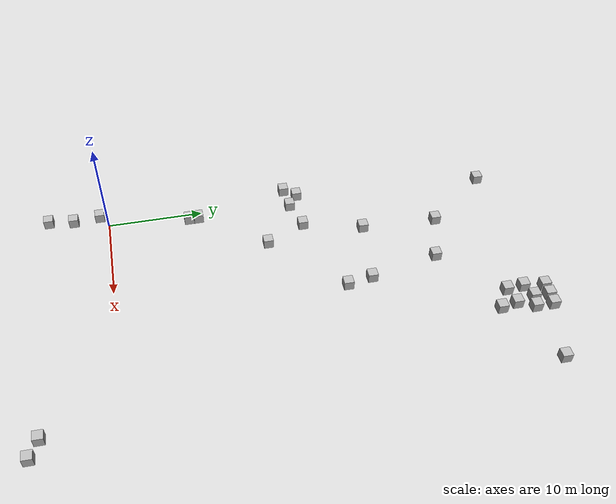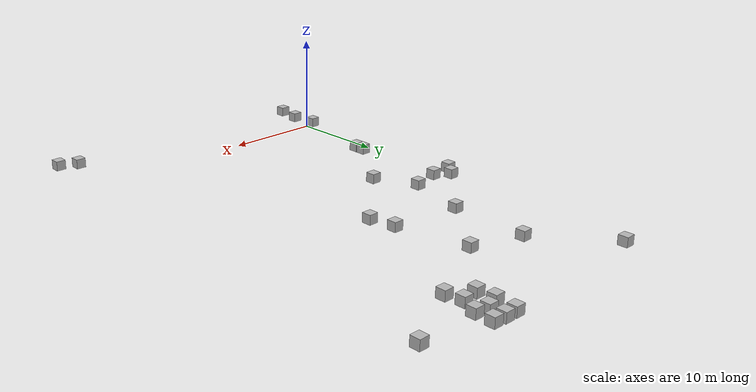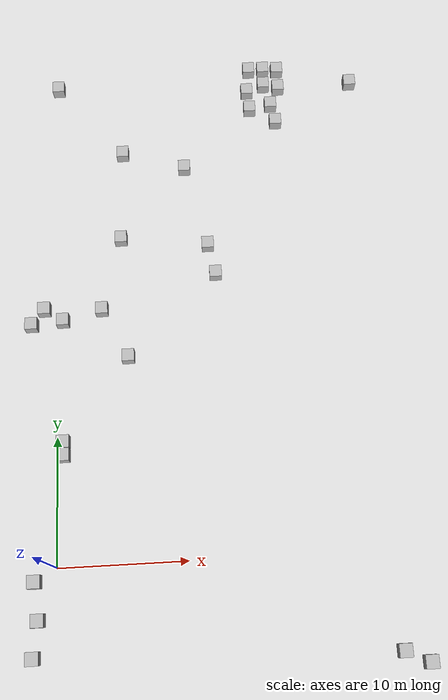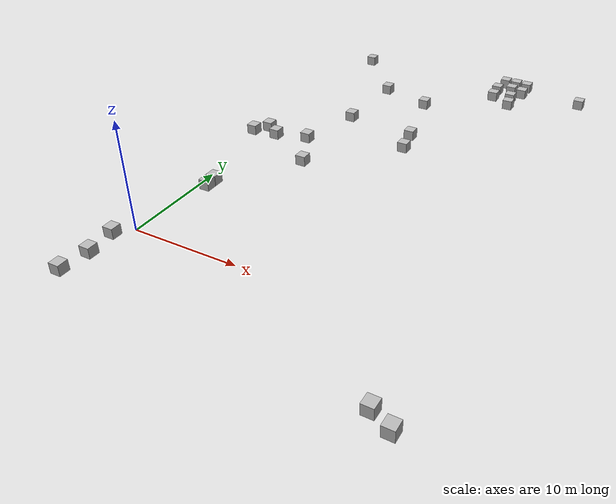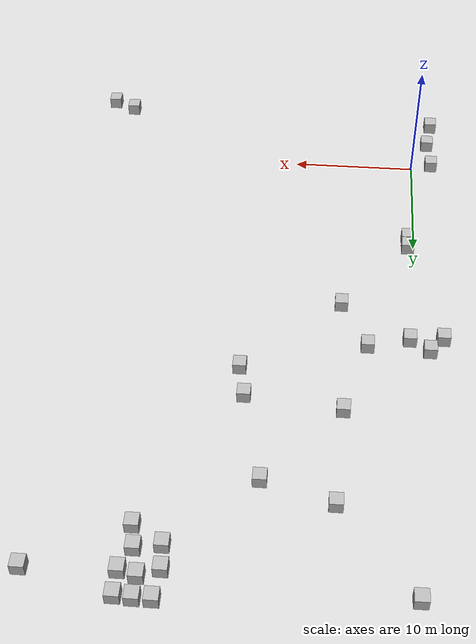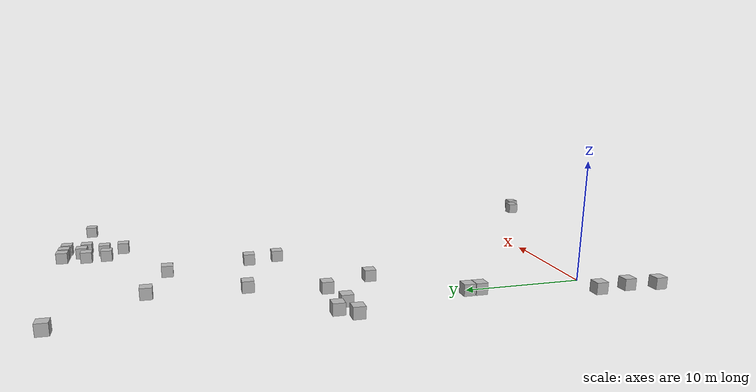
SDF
<sdf version="1.10">
 <world name="factorymate_dynamic_logistics_warehouse">
  <gravity>0 0 -9.8</gravity>
  <physics name="default_physics" default="0" type="ode">
   <max_step_size>0.001</max_step_size>
   <real_time_factor>1</real_time_factor>
   <real_time_update_rate>1000</real_time_update_rate>
  </physics>
  <scene>
   <ambient>0.55 0.55 0.55 1</ambient>
   <background>0.8 0.8 0.8 1</background>
   <shadows>true</shadows>
  </scene>
  <light type="directional" name="sun">
   <pose>0 0 15 0 0 0</pose>
   <diffuse>0.9 0.9 0.9 1</diffuse>
   <specular>0.25 0.25 0.25 1</specular>
   <attenuation>
    <range>1000</range>
    <constant>0.9</constant>
    <linear>0.01</linear>
    <quadratic>0.001</quadratic>
   </attenuation>
   <direction>-0.5 0.2 -1.0</direction>
  </light>
  <model name="aws_robomaker_warehouse_Bucket_01_020">
   <link name="aws_robomaker_warehouse_Bucket_01__body">
    <visual name="visual"><geometry><box><size>1 1 1</size></box></geometry><meta><layer>1</layer></meta></visual>
    <collision name="collision_0">
     <geometry><box><size>1 1 1</size></box></geometry>
     <surface>
      <friction>
       <ode><mu>0.4</mu><mu2>0.4</mu2><fdir1>0 0 0</fdir1><slip1>0</slip1><slip2>0</slip2></ode>
       <torsional>
        <coefficient>1</coefficient>
        <patch_radius>0</patch_radius>
        <surface_radius>0</surface_radius>
        <use_patch_radius>1</use_patch_radius>
        <ode><slip>0</slip></ode>
       </torsional>
      </friction>
     </surface>
    </collision>
   </link>
   <static>1</static>
   <pose>0.433449 9.63171 0 0 0 -1.56316</pose>
  </model>
  <model name="aws_robomaker_warehouse_Bucket_01_021">
   <link name="aws_robomaker_warehouse_Bucket_01__body">
    <visual name="visual"><geometry><box><size>1 1 1</size></box></geometry><meta><layer>1</layer></meta></visual>
    <collision name="collision_0">
     <geometry><box><size>1 1 1</size></box></geometry>
     <surface>
      <friction>
       <ode><mu>0.4</mu><mu2>0.4</mu2><fdir1>0 0 0</fdir1><slip1>0</slip1><slip2>0</slip2></ode>
       <torsional>
        <coefficient>1</coefficient>
        <patch_radius>0</patch_radius>
        <surface_radius>0</surface_radius>
        <use_patch_radius>1</use_patch_radius>
        <ode><slip>0</slip></ode>
       </torsional>
      </friction>
     </surface>
    </collision>
   </link>
   <static>1</static>
   <pose>-1.8321 -6.3752 0 0 0 -1.56316</pose>
  </model>
  <model name="aws_robomaker_warehouse_Bucket_01_022">
   <link name="aws_robomaker_warehouse_Bucket_01__body">
    <visual name="visual"><geometry><box><size>1 1 1</size></box></geometry><meta><layer>1</layer></meta></visual>
    <collision name="collision_0">
     <geometry><box><size>1 1 1</size></box></geometry>
     <surface>
      <friction>
       <ode><mu>0.4</mu><mu2>0.4</mu2><fdir1>0 0 0</fdir1><slip1>0</slip1><slip2>0</slip2></ode>
       <torsional>
        <coefficient>1</coefficient>
        <patch_radius>0</patch_radius>
        <surface_radius>0</surface_radius>
        <use_patch_radius>1</use_patch_radius>
        <ode><slip>0</slip></ode>
       </torsional>
      </friction>
     </surface>
    </collision>
   </link>
   <static>1</static>
   <pose>0.433449 8.59 0 0 0 -1.56316</pose>
  </model>
  <light name="Warehouse_CeilingLight_003" type="point">
   <pose>0 0 9 0 -0 0</pose>
   <diffuse>0.5 0.5 0.5 1</diffuse>
   <specular>0.2 0.2 0.2 1</specular>
   <attenuation>
    <range>80</range>
    <constant>0.3</constant>
    <linear>0.01</linear>
    <quadratic>0.001</quadratic>
   </attenuation>
   <direction>0.1 0.1 -1</direction>
  </light>
  <magnetic_field>6e-06 2.3e-05 -4.2e-05</magnetic_field>
  <atmosphere type="adiabatic"/>
  <scene><ambient>0.4 0.4 0.4 1</ambient><background>0.7 0.7 0.7 1</background><shadows>1</shadows></scene>
  <audio><device>default</device></audio>
  <spherical_coordinates>
   <surface_model>EARTH_WGS84</surface_model>
   <latitude_deg>0</latitude_deg>
   <longitude_deg>0</longitude_deg>
   <elevation>0</elevation>
   <heading_deg>0</heading_deg>
  </spherical_coordinates>
  <model name="Untitled">
   <model name="aws_robomaker_warehouse_Bucket_01">
    <link name="body">
     <visual name="visual"><geometry><box><size>1 1 1</size></box></geometry><meta><layer>1</layer></meta></visual>
     <collision name="collision_0">
      <geometry><box><size>1 1 1</size></box></geometry>
      <surface>
       <friction>
        <ode><mu>0.4</mu><mu2>0.4</mu2><fdir1>0 0 0</fdir1><slip1>0</slip1><slip2>0</slip2></ode>
        <torsional>
         <coefficient>1</coefficient>
         <patch_radius>0</patch_radius>
         <surface_radius>0</surface_radius>
         <use_patch_radius>1</use_patch_radius>
         <ode><slip>0</slip></ode>
        </torsional>
       </friction>
      </surface>
     </collision>
    </link>
    <static>1</static>
    <pose>0.141914 -1.40115 0 0 -0 0</pose>
   </model>
   <model name="aws_robomaker_warehouse_DeskC_01">
    <link name="link">
     <collision name="collision">
      <geometry><box><size>1 1 1</size></box></geometry>
      <surface>
       <friction><ode><mu>0.3</mu><mu2>0.3</mu2><fdir1>0 0 0</fdir1><slip1>0</slip1><slip2>0</slip2></ode></friction>
      </surface>
     </collision>
     <visual name="visual"><geometry><box><size>1 1 1</size></box></geometry><meta><layer>1</layer></meta></visual>
    </link>
    <static>1</static>
    <pose>-0.141916 1.40114 0 0 -0 0</pose>
   </model>
   <static>0</static>
   <pose>-1.60315 -2.32122 0 0 -0 0</pose>
  </model>
  <model name="aws_robomaker_warehouse_Bucket_01_0">
   <link name="body">
    <visual name="visual"><geometry><box><size>1 1 1</size></box></geometry><meta><layer>1</layer></meta></visual>
    <collision name="collision_0">
     <geometry><box><size>1 1 1</size></box></geometry>
     <surface>
      <friction>
       <ode><mu>0.4</mu><mu2>0.4</mu2><fdir1>0 0 0</fdir1><slip1>0</slip1><slip2>0</slip2></ode>
       <torsional>
        <coefficient>1</coefficient>
        <patch_radius>0</patch_radius>
        <surface_radius>0</surface_radius>
        <use_patch_radius>1</use_patch_radius>
        <ode><slip>0</slip></ode>
       </torsional>
      </friction>
     </surface>
    </collision>
   </link>
   <static>1</static>
   <pose>5.70576 16.4215 0 0 -0 0</pose>
  </model>
  <model name="waybot_gorund">
   <link name="link">
    <visual name="visual"><geometry><box><size>1 1 1</size></box></geometry><meta><layer>1</layer></meta></visual>
    <collision name="collision">
     <geometry><box><size>1 1 1</size></box></geometry>
     <surface>
      <friction>
       <ode><mu>0.3</mu><mu2>0.3</mu2><fdir1>0 0 0</fdir1><slip1>0</slip1><slip2>0</slip2></ode>
       <torsional>
        <coefficient>1</coefficient>
        <patch_radius>0</patch_radius>
        <surface_radius>0</surface_radius>
        <use_patch_radius>1</use_patch_radius>
        <ode><slip>0</slip></ode>
       </torsional>
      </friction>
      <bounce><restitution_coefficient>0</restitution_coefficient><threshold>1e+06</threshold></bounce>
      <contact>
       <collide_without_contact>0</collide_without_contact>
       <collide_without_contact_bitmask>1</collide_without_contact_bitmask>
       <collide_bitmask>1</collide_bitmask>
       <ode>
        <soft_cfm>0</soft_cfm>
        <soft_erp>0.2</soft_erp>
        <kp>1e+13</kp>
        <kd>1</kd>
        <max_vel>0.01</max_vel>
        <min_depth>0</min_depth>
       </ode>
       <bullet>
        <split_impulse>1</split_impulse>
        <split_impulse_penetration_threshold>-0.01</split_impulse_penetration_threshold>
        <soft_cfm>0</soft_cfm>
        <soft_erp>0.2</soft_erp>
        <kp>1e+13</kp>
        <kd>1</kd>
       </bullet>
      </contact>
     </surface>
    </collision>
   </link>
   <static>1</static>
   <pose>0.093862 41.632 0 0 -0 0</pose>
  </model>
  <model name="aws_robomaker_warehouse_Bucket_01_1">
   <link name="body">
    <visual name="visual"><geometry><box><size>1 1 1</size></box></geometry><meta><layer>1</layer></meta></visual>
    <collision name="collision_0">
     <geometry><box><size>1 1 1</size></box></geometry>
     <surface>
      <friction>
       <ode><mu>0.4</mu><mu2>0.4</mu2><fdir1>0 0 0</fdir1><slip1>0</slip1><slip2>0</slip2></ode>
       <torsional>
        <coefficient>1</coefficient>
        <patch_radius>0</patch_radius>
        <surface_radius>0</surface_radius>
        <use_patch_radius>1</use_patch_radius>
        <ode><slip>0</slip></ode>
       </torsional>
      </friction>
     </surface>
    </collision>
   </link>
   <static>1</static>
   <pose>5.32193 26.8473 0 0 -0 0</pose>
  </model>
  <model name="aws_robomaker_warehouse_Bucket_01_2">
   <link name="body">
    <visual name="visual"><geometry><box><size>1 1 1</size></box></geometry><meta><layer>1</layer></meta></visual>
    <collision name="collision_0">
     <geometry><box><size>1 1 1</size></box></geometry>
     <surface>
      <friction>
       <ode><mu>0.4</mu><mu2>0.4</mu2><fdir1>0 0 0</fdir1><slip1>0</slip1><slip2>0</slip2></ode>
       <torsional>
        <coefficient>1</coefficient>
        <patch_radius>0</patch_radius>
        <surface_radius>0</surface_radius>
        <use_patch_radius>1</use_patch_radius>
        <ode><slip>0</slip></ode>
       </torsional>
      </friction>
     </surface>
    </collision>
   </link>
   <static>1</static>
   <pose>5.63979 34.8748 0 0 -0 0</pose>
  </model>
  <model name="aws_robomaker_warehouse_Bucket_01_3">
   <link name="body">
    <visual name="visual"><geometry><box><size>1 1 1</size></box></geometry><meta><layer>1</layer></meta></visual>
    <collision name="collision_0">
     <geometry><box><size>1 1 1</size></box></geometry>
     <surface>
      <friction>
       <ode><mu>0.4</mu><mu2>0.4</mu2><fdir1>0 0 0</fdir1><slip1>0</slip1><slip2>0</slip2></ode>
       <torsional>
        <coefficient>1</coefficient>
        <patch_radius>0</patch_radius>
        <surface_radius>0</surface_radius>
        <use_patch_radius>1</use_patch_radius>
        <ode><slip>0</slip></ode>
       </torsional>
      </friction>
     </surface>
    </collision>
   </link>
   <static>1</static>
   <pose>3.6268 20.5877 0 0 -0 0</pose>
  </model>
  <model name="aws_robomaker_warehouse_Bucket_01_4">
   <link name="body">
    <visual name="visual"><geometry><box><size>1 1 1</size></box></geometry><meta><layer>1</layer></meta></visual>
    <collision name="collision_0">
     <geometry><box><size>1 1 1</size></box></geometry>
     <surface>
      <friction>
       <ode><mu>0.4</mu><mu2>0.4</mu2><fdir1>0 0 0</fdir1><slip1>0</slip1><slip2>0</slip2></ode>
       <torsional>
        <coefficient>1</coefficient>
        <patch_radius>0</patch_radius>
        <surface_radius>0</surface_radius>
        <use_patch_radius>1</use_patch_radius>
        <ode><slip>0</slip></ode>
       </torsional>
      </friction>
     </surface>
    </collision>
   </link>
   <static>1</static>
   <pose>-1.09618 20.7984 0 0 -0 0</pose>
  </model>
  <model name="aws_robomaker_warehouse_Bucket_01_5">
   <link name="body">
    <visual name="visual"><geometry><box><size>1 1 1</size></box></geometry><meta><layer>1</layer></meta></visual>
    <collision name="collision_0">
     <geometry><box><size>1 1 1</size></box></geometry>
     <surface>
      <friction>
       <ode><mu>0.4</mu><mu2>0.4</mu2><fdir1>0 0 0</fdir1><slip1>0</slip1><slip2>0</slip2></ode>
       <torsional>
        <coefficient>1</coefficient>
        <patch_radius>0</patch_radius>
        <surface_radius>0</surface_radius>
        <use_patch_radius>1</use_patch_radius>
        <ode><slip>0</slip></ode>
       </torsional>
      </friction>
     </surface>
    </collision>
   </link>
   <static>1</static>
   <pose>-2.13817 19.5115 0 0 -0 0</pose>
  </model>
  <model name="aws_robomaker_warehouse_Bucket_01_6">
   <link name="body">
    <visual name="visual"><geometry><box><size>1 1 1</size></box></geometry><meta><layer>1</layer></meta></visual>
    <collision name="collision_0">
     <geometry><box><size>1 1 1</size></box></geometry>
     <surface>
      <friction>
       <ode><mu>0.4</mu><mu2>0.4</mu2><fdir1>0 0 0</fdir1><slip1>0</slip1><slip2>0</slip2></ode>
       <torsional>
        <coefficient>1</coefficient>
        <patch_radius>0</patch_radius>
        <surface_radius>0</surface_radius>
        <use_patch_radius>1</use_patch_radius>
        <ode><slip>0</slip></ode>
       </torsional>
      </friction>
     </surface>
    </collision>
   </link>
   <static>1</static>
   <pose>0.423469 19.756 0 0 -0 0</pose>
  </model>
  <light name="user_point_light_0" type="point">
   <pose>4.24341 42.2777 1 0 -0 0</pose>
   <diffuse>0.5 0.5 0.5 1</diffuse>
   <specular>0.1 0.1 0.1 1</specular>
   <attenuation>
    <range>20</range>
    <constant>0.5</constant>
    <linear>0.01</linear>
    <quadratic>0.001</quadratic>
   </attenuation>
   <cast_shadows>0</cast_shadows>
   <direction>0 0 -1</direction>
  </light>
  <model name="aws_robomaker_warehouse_Bucket_01_7">
   <link name="body">
    <visual name="visual"><geometry><box><size>1 1 1</size></box></geometry><meta><layer>1</layer></meta></visual>
    <collision name="collision_0">
     <geometry><box><size>1 1 1</size></box></geometry>
     <surface>
      <friction>
       <ode><mu>0.4</mu><mu2>0.4</mu2><fdir1>0 0 0</fdir1><slip1>0</slip1><slip2>0</slip2></ode>
       <torsional>
        <coefficient>1</coefficient>
        <patch_radius>0</patch_radius>
        <surface_radius>0</surface_radius>
        <use_patch_radius>1</use_patch_radius>
        <ode><slip>0</slip></ode>
       </torsional>
      </friction>
     </surface>
    </collision>
   </link>
   <static>1</static>
   <pose>12.6001 25.9609 0 0 -0 0</pose>
  </model>
  <model name="aws_robomaker_warehouse_Bucket_01_8">
   <link name="body">
    <visual name="visual"><geometry><box><size>1 1 1</size></box></geometry><meta><layer>1</layer></meta></visual>
    <collision name="collision_0">
     <geometry><box><size>1 1 1</size></box></geometry>
     <surface>
      <friction>
       <ode><mu>0.4</mu><mu2>0.4</mu2><fdir1>0 0 0</fdir1><slip1>0</slip1><slip2>0</slip2></ode>
       <torsional>
        <coefficient>1</coefficient>
        <patch_radius>0</patch_radius>
        <surface_radius>0</surface_radius>
        <use_patch_radius>1</use_patch_radius>
        <ode><slip>0</slip></ode>
       </torsional>
      </friction>
     </surface>
    </collision>
   </link>
   <static>1</static>
   <pose>13.1244 23.3177 0 0 -0 0</pose>
  </model>
  <model name="aws_robomaker_warehouse_Bucket_01_9">
   <link name="body">
    <visual name="visual"><geometry><box><size>1 1 1</size></box></geometry><meta><layer>1</layer></meta></visual>
    <collision name="collision_0">
     <geometry><box><size>1 1 1</size></box></geometry>
     <surface>
      <friction>
       <ode><mu>0.4</mu><mu2>0.4</mu2><fdir1>0 0 0</fdir1><slip1>0</slip1><slip2>0</slip2></ode>
       <torsional>
        <coefficient>1</coefficient>
        <patch_radius>0</patch_radius>
        <surface_radius>0</surface_radius>
        <use_patch_radius>1</use_patch_radius>
        <ode><slip>0</slip></ode>
       </torsional>
      </friction>
     </surface>
    </collision>
   </link>
   <static>1</static>
   <pose>10.9157 33.2489 0 0 -0 0</pose>
  </model>
  <model name="aws_robomaker_warehouse_Bucket_01_10">
   <link name="body">
    <visual name="visual"><geometry><box><size>1 1 1</size></box></geometry><meta><layer>1</layer></meta></visual>
    <collision name="collision_0">
     <geometry><box><size>1 1 1</size></box></geometry>
     <surface>
      <friction>
       <ode><mu>0.4</mu><mu2>0.4</mu2><fdir1>0 0 0</fdir1><slip1>0</slip1><slip2>0</slip2></ode>
       <torsional>
        <coefficient>1</coefficient>
        <patch_radius>0</patch_radius>
        <surface_radius>0</surface_radius>
        <use_patch_radius>1</use_patch_radius>
        <ode><slip>0</slip></ode>
       </torsional>
      </friction>
     </surface>
    </collision>
   </link>
   <static>1</static>
   <pose>19.569 42.6346 0 0 -0 0</pose>
  </model>
  <model name="aws_robomaker_warehouse_Bucket_01_11">
   <link name="body">
    <visual name="visual"><geometry><box><size>1 1 1</size></box></geometry><meta><layer>1</layer></meta></visual>
    <collision name="collision_0">
     <geometry><box><size>1 1 1</size></box></geometry>
     <surface>
      <friction>
       <ode><mu>0.4</mu><mu2>0.4</mu2><fdir1>0 0 0</fdir1><slip1>0</slip1><slip2>0</slip2></ode>
       <torsional>
        <coefficient>1</coefficient>
        <patch_radius>0</patch_radius>
        <surface_radius>0</surface_radius>
        <use_patch_radius>1</use_patch_radius>
        <ode><slip>0</slip></ode>
       </torsional>
      </friction>
     </surface>
    </collision>
   </link>
   <static>1</static>
   <pose>18.3234 42.7208 0 0 -0 0</pose>
  </model>
  <model name="aws_robomaker_warehouse_Bucket_01_12">
   <link name="body">
    <visual name="visual"><geometry><box><size>1 1 1</size></box></geometry><meta><layer>1</layer></meta></visual>
    <collision name="collision_0">
     <geometry><box><size>1 1 1</size></box></geometry>
     <surface>
      <friction>
       <ode><mu>0.4</mu><mu2>0.4</mu2><fdir1>0 0 0</fdir1><slip1>0</slip1><slip2>0</slip2></ode>
       <torsional>
        <coefficient>1</coefficient>
        <patch_radius>0</patch_radius>
        <surface_radius>0</surface_radius>
        <use_patch_radius>1</use_patch_radius>
        <ode><slip>0</slip></ode>
       </torsional>
      </friction>
     </surface>
    </collision>
   </link>
   <static>1</static>
   <pose>17.0635 42.7283 0 0 -0 0</pose>
  </model>
  <model name="aws_robomaker_warehouse_Bucket_01_13">
   <link name="body">
    <visual name="visual"><geometry><box><size>1 1 1</size></box></geometry><meta><layer>1</layer></meta></visual>
    <collision name="collision_0">
     <geometry><box><size>1 1 1</size></box></geometry>
     <surface>
      <friction>
       <ode><mu>0.4</mu><mu2>0.4</mu2><fdir1>0 0 0</fdir1><slip1>0</slip1><slip2>0</slip2></ode>
       <torsional>
        <coefficient>1</coefficient>
        <patch_radius>0</patch_radius>
        <surface_radius>0</surface_radius>
        <use_patch_radius>1</use_patch_radius>
        <ode><slip>0</slip></ode>
       </torsional>
      </friction>
     </surface>
    </collision>
   </link>
   <static>1</static>
   <pose>19.5577 40.8293 0 0 -0 0</pose>
  </model>
  <model name="aws_robomaker_warehouse_Bucket_01_14">
   <link name="body">
    <visual name="visual"><geometry><box><size>1 1 1</size></box></geometry><meta><layer>1</layer></meta></visual>
    <collision name="collision_0">
     <geometry><box><size>1 1 1</size></box></geometry>
     <surface>
      <friction>
       <ode><mu>0.4</mu><mu2>0.4</mu2><fdir1>0 0 0</fdir1><slip1>0</slip1><slip2>0</slip2></ode>
       <torsional>
        <coefficient>1</coefficient>
        <patch_radius>0</patch_radius>
        <surface_radius>0</surface_radius>
        <use_patch_radius>1</use_patch_radius>
        <ode><slip>0</slip></ode>
       </torsional>
      </friction>
     </surface>
    </collision>
   </link>
   <static>1</static>
   <pose>18.2734 41.1462 0 0 -0 0</pose>
  </model>
  <model name="aws_robomaker_warehouse_Bucket_01_15">
   <link name="body">
    <visual name="visual"><geometry><box><size>1 1 1</size></box></geometry><meta><layer>1</layer></meta></visual>
    <collision name="collision_0">
     <geometry><box><size>1 1 1</size></box></geometry>
     <surface>
      <friction>
       <ode><mu>0.4</mu><mu2>0.4</mu2><fdir1>0 0 0</fdir1><slip1>0</slip1><slip2>0</slip2></ode>
       <torsional>
        <coefficient>1</coefficient>
        <patch_radius>0</patch_radius>
        <surface_radius>0</surface_radius>
        <use_patch_radius>1</use_patch_radius>
        <ode><slip>0</slip></ode>
       </torsional>
      </friction>
     </surface>
    </collision>
   </link>
   <static>1</static>
   <pose>16.7737 40.5695 0 0 -0 0</pose>
  </model>
  <model name="aws_robomaker_warehouse_Bucket_01_16">
   <link name="body">
    <visual name="visual"><geometry><box><size>1 1 1</size></box></geometry><meta><layer>1</layer></meta></visual>
    <collision name="collision_0">
     <geometry><box><size>1 1 1</size></box></geometry>
     <surface>
      <friction>
       <ode><mu>0.4</mu><mu2>0.4</mu2><fdir1>0 0 0</fdir1><slip1>0</slip1><slip2>0</slip2></ode>
       <torsional>
        <coefficient>1</coefficient>
        <patch_radius>0</patch_radius>
        <surface_radius>0</surface_radius>
        <use_patch_radius>1</use_patch_radius>
        <ode><slip>0</slip></ode>
       </torsional>
      </friction>
     </surface>
    </collision>
   </link>
   <static>1</static>
   <pose>18.7804 39.1318 0 0 -0 0</pose>
  </model>
  <model name="aws_robomaker_warehouse_Bucket_01_17">
   <link name="body">
    <visual name="visual"><geometry><box><size>1 1 1</size></box></geometry><meta><layer>1</layer></meta></visual>
    <collision name="collision_0">
     <geometry><box><size>1 1 1</size></box></geometry>
     <surface>
      <friction>
       <ode><mu>0.4</mu><mu2>0.4</mu2><fdir1>0 0 0</fdir1><slip1>0</slip1><slip2>0</slip2></ode>
       <torsional>
        <coefficient>1</coefficient>
        <patch_radius>0</patch_radius>
        <surface_radius>0</surface_radius>
        <use_patch_radius>1</use_patch_radius>
        <ode><slip>0</slip></ode>
       </torsional>
      </friction>
     </surface>
    </collision>
   </link>
   <static>1</static>
   <pose>16.9145 38.7931 0 0 -0 0</pose>
  </model>
  <model name="aws_robomaker_warehouse_Bucket_01_18">
   <link name="body">
    <visual name="visual"><geometry><box><size>1 1 1</size></box></geometry><meta><layer>1</layer></meta></visual>
    <collision name="collision_0">
     <geometry><box><size>1 1 1</size></box></geometry>
     <surface>
      <friction>
       <ode><mu>0.4</mu><mu2>0.4</mu2><fdir1>0 0 0</fdir1><slip1>0</slip1><slip2>0</slip2></ode>
       <torsional>
        <coefficient>1</coefficient>
        <patch_radius>0</patch_radius>
        <surface_radius>0</surface_radius>
        <use_patch_radius>1</use_patch_radius>
        <ode><slip>0</slip></ode>
       </torsional>
      </friction>
     </surface>
    </collision>
   </link>
   <static>1</static>
   <pose>19.0987 37.4201 0 0 -0 0</pose>
  </model>
  <model name="aws_robomaker_warehouse_Bucket_01_19">
   <link name="body">
    <visual name="visual"><geometry><box><size>1 1 1</size></box></geometry><meta><layer>1</layer></meta></visual>
    <collision name="collision_0">
     <geometry><box><size>1 1 1</size></box></geometry>
     <surface>
      <friction>
       <ode><mu>0.4</mu><mu2>0.4</mu2><fdir1>0 0 0</fdir1><slip1>0</slip1><slip2>0</slip2></ode>
       <torsional>
        <coefficient>1</coefficient>
        <patch_radius>0</patch_radius>
        <surface_radius>0</surface_radius>
        <use_patch_radius>1</use_patch_radius>
        <ode><slip>0</slip></ode>
       </torsional>
      </friction>
     </surface>
    </collision>
   </link>
   <static>1</static>
   <pose>25.9577 41.0196 0 0 -0 0</pose>
  </model>
  <model name="aws_robomaker_warehouse_Bucket_01_20">
   <link name="body">
    <visual name="visual"><geometry><box><size>1 1 1</size></box></geometry><meta><layer>1</layer></meta></visual>
    <collision name="collision_0">
     <geometry><box><size>1 1 1</size></box></geometry>
     <surface>
      <friction>
       <ode><mu>0.4</mu><mu2>0.4</mu2><fdir1>0 0 0</fdir1><slip1>0</slip1><slip2>0</slip2></ode>
       <torsional>
        <coefficient>1</coefficient>
        <patch_radius>0</patch_radius>
        <surface_radius>0</surface_radius>
        <use_patch_radius>1</use_patch_radius>
        <ode><slip>0</slip></ode>
       </torsional>
      </friction>
     </surface>
    </collision>
   </link>
   <static>1</static>
   <pose>25.5015 -7.22065 0 0 -0 0</pose>
  </model>
  <model name="aws_robomaker_warehouse_Bucket_01_21">
   <link name="body">
    <visual name="visual"><geometry><box><size>1 1 1</size></box></geometry><meta><layer>1</layer></meta></visual>
    <collision name="collision_0">
     <geometry><box><size>1 1 1</size></box></geometry>
     <surface>
      <friction>
       <ode><mu>0.4</mu><mu2>0.4</mu2><fdir1>0 0 0</fdir1><slip1>0</slip1><slip2>0</slip2></ode>
       <torsional>
        <coefficient>1</coefficient>
        <patch_radius>0</patch_radius>
        <surface_radius>0</surface_radius>
        <use_patch_radius>1</use_patch_radius>
        <ode><slip>0</slip></ode>
       </torsional>
      </friction>
     </surface>
    </collision>
   </link>
   <static>1</static>
   <pose>27.3318 -8.09227 0 0 -0 0</pose>
  </model>
  <plugin filename="gz-sim-physics-system" name="gz::sim::systems::Physics"/>
  <plugin filename="gz-sim-user-commands-system" name="gz::sim::systems::UserCommands"/>
  <plugin filename="gz-sim-scene-broadcaster-system" name="gz::sim::systems::SceneBroadcaster"/>
  <plugin filename="gz-sim-sensors-system" name="gz::sim::systems::Sensors">
   <render_engine>ogre2</render_engine>
  </plugin>
 </world>
</sdf>
